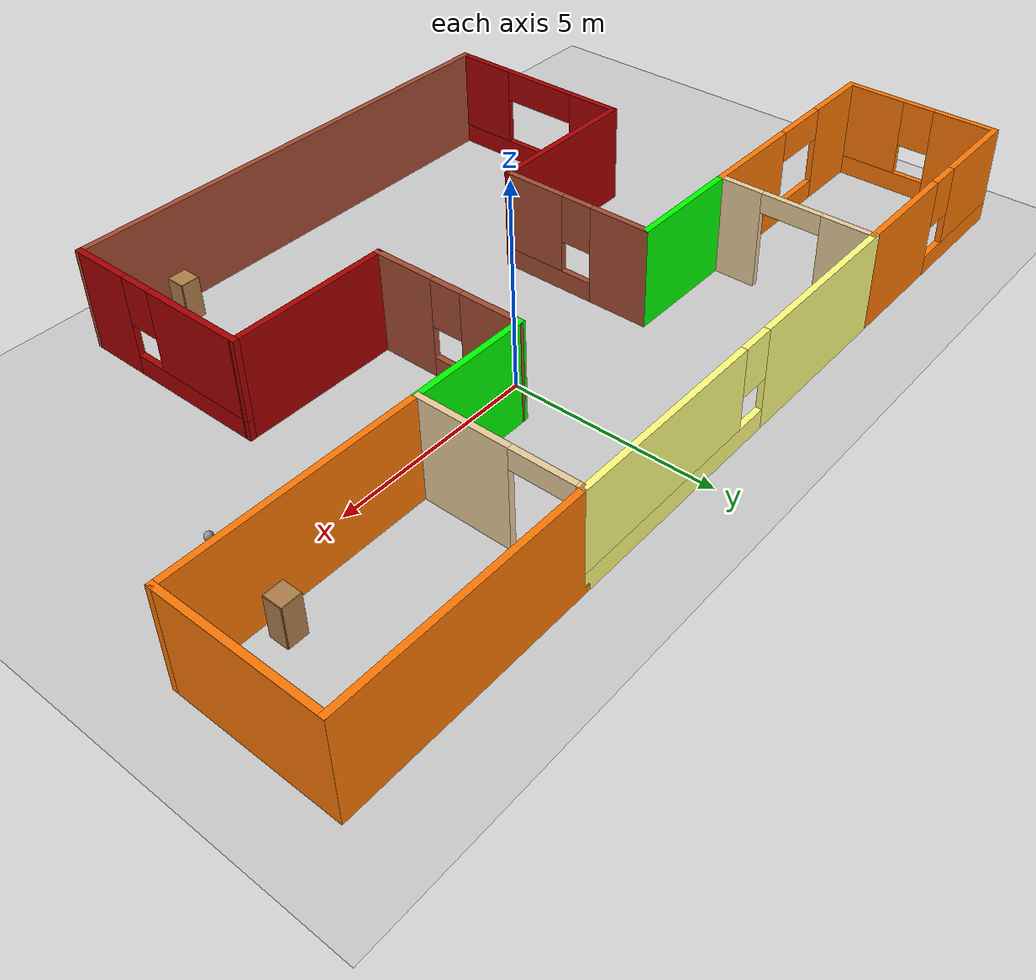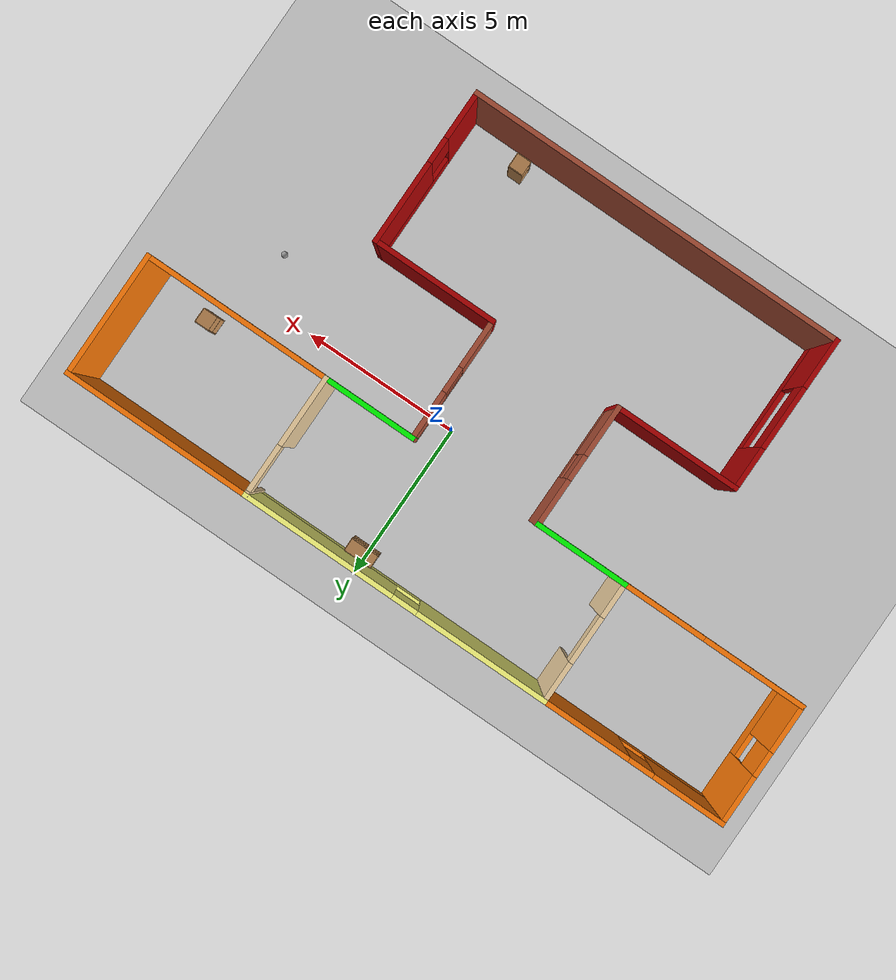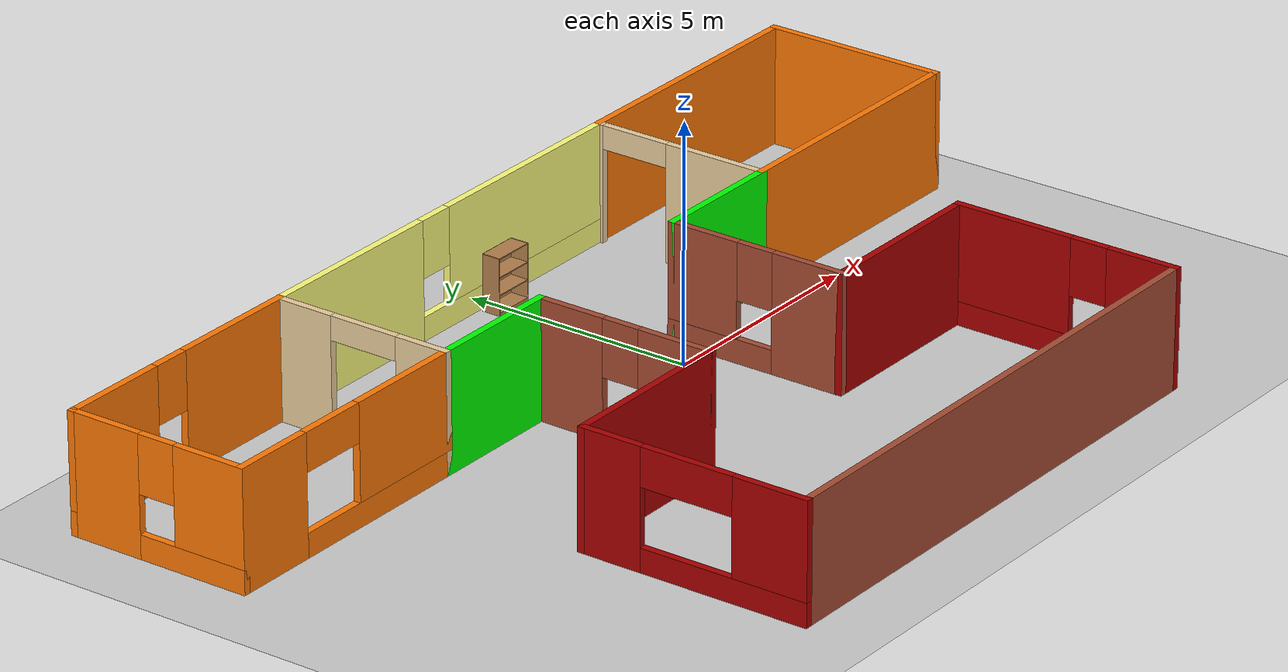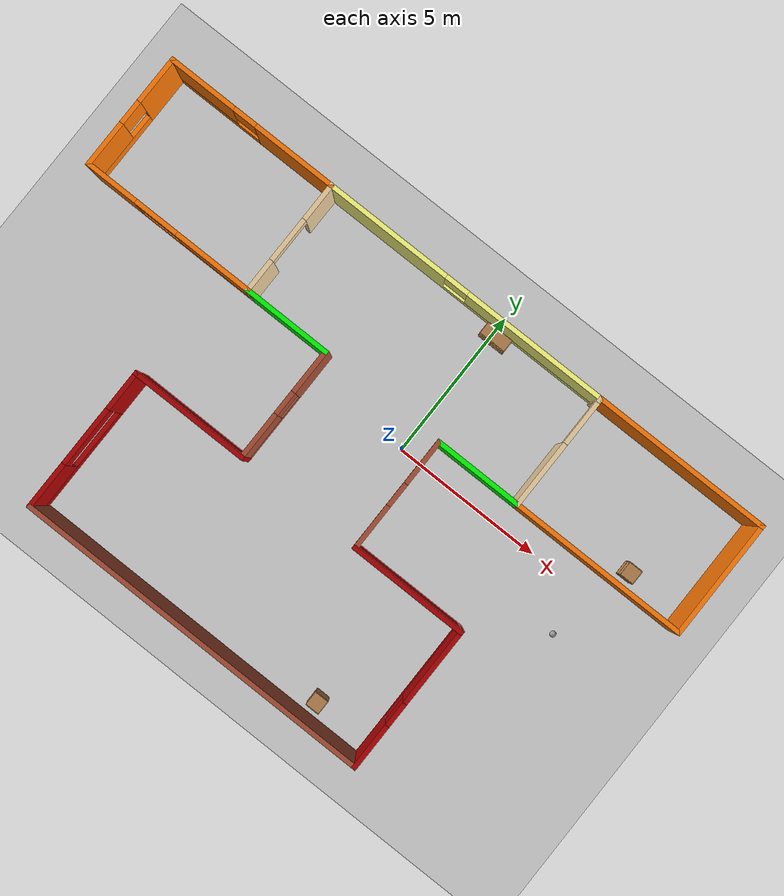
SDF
<sdf version="1.6">
 <world name="default">
  <model name="ground_plane">
   <static>1</static>
   <link name="link">
    <collision name="collision">
     <geometry><plane><normal>0 0 1</normal><size>100 100</size></plane></geometry>
     <surface><friction><ode><mu>100</mu><mu2>50</mu2></ode></friction></surface>
    </collision>
    <visual name="visual">
     <cast_shadows>0</cast_shadows>
     <geometry><plane><normal>0 0 1</normal><size>100 100</size></plane></geometry>
     <material>
      <script><uri>file://media/materials/scripts/gazebo.material</uri><name>Gazebo/Grey</name></script>
     </material>
    </visual>
   </link>
  </model>
  <model name="projectbuilding">
   <pose>-1.3397 -1.63448 0 0 -0 0</pose>
   <link name="Wall_0">
    <pose>0 6.2751 0 0 -0 0</pose>
    <visual name="Wall_0_Visual_0">
     <pose>-2.85668 0 1.25 0 -0 0</pose>
     <geometry><box><size>4.28664 0.15 2.5</size></box></geometry>
     <material>
      <script><uri>file://media/materials/scripts/gazebo.material</uri><name>Gazebo/Grey</name></script>
      <ambient>1 1 0.498039 1</ambient>
     </material>
     <meta><layer>0</layer></meta>
    </visual>
    <collision name="Wall_0_Collision_0">
     <geometry><box><size>4.28664 0.15 2.5</size></box></geometry>
     <pose>-2.85668 0 1.25 0 -0 0</pose>
    </collision>
    <visual name="Wall_0_Visual_1">
     <pose>2.14332 0 0.25 0 -0 0</pose>
     <geometry><box><size>5.71336 0.15 0.5</size></box></geometry>
     <material>
      <script><uri>file://media/materials/scripts/gazebo.material</uri><name>Gazebo/Grey</name></script>
      <ambient>1 1 0.498039 1</ambient>
     </material>
     <meta><layer>0</layer></meta>
    </visual>
    <collision name="Wall_0_Collision_1">
     <geometry><box><size>5.71336 0.15 0.5</size></box></geometry>
     <pose>2.14332 0 0.25 0 -0 0</pose>
    </collision>
    <visual name="Wall_0_Visual_2">
     <pose>2.54332 0 1.5 0 -0 0</pose>
     <geometry><box><size>4.91336 0.15 2</size></box></geometry>
     <material>
      <script><uri>file://media/materials/scripts/gazebo.material</uri><name>Gazebo/Grey</name></script>
      <ambient>1 1 0.498039 1</ambient>
     </material>
     <meta><layer>0</layer></meta>
    </visual>
    <collision name="Wall_0_Collision_2">
     <geometry><box><size>4.91336 0.15 2</size></box></geometry>
     <pose>2.54332 0 1.5 0 -0 0</pose>
    </collision>
    <visual name="Wall_0_Visual_3">
     <pose>-0.31336 0 1.9 0 -0 0</pose>
     <geometry><box><size>0.8 0.15 1.2</size></box></geometry>
     <material>
      <script><uri>file://media/materials/scripts/gazebo.material</uri><name>Gazebo/Grey</name></script>
      <ambient>1 1 0.498039 1</ambient>
     </material>
     <meta><layer>0</layer></meta>
    </visual>
    <collision name="Wall_0_Collision_3">
     <geometry><box><size>0.8 0.15 1.2</size></box></geometry>
     <pose>-0.31336 0 1.9 0 -0 0</pose>
    </collision>
   </link>
   <link name="Wall_16">
    <pose>-4.925 4.3501 0 0 0 -1.5708</pose>
    <visual name="Wall_16_Visual_0">
     <pose>-1.33475 0 1.25 0 -0 0</pose>
     <geometry><box><size>1.33049 0.15 2.5</size></box></geometry>
     <material>
      <script><uri>file://media/materials/scripts/gazebo.material</uri><name>Gazebo/Grey</name></script>
      <ambient>0.921569 0.807843 0.615686 1</ambient>
     </material>
     <meta><layer>0</layer></meta>
    </visual>
    <collision name="Wall_16_Collision_0">
     <geometry><box><size>1.33049 0.15 2.5</size></box></geometry>
     <pose>-1.33475 0 1.25 0 -0 0</pose>
    </collision>
    <visual name="Wall_16_Visual_1">
     <pose>1.41525 0 1.25 0 -0 0</pose>
     <geometry><box><size>1.16951 0.15 2.5</size></box></geometry>
     <material>
      <script><uri>file://media/materials/scripts/gazebo.material</uri><name>Gazebo/Grey</name></script>
      <ambient>0.921569 0.807843 0.615686 1</ambient>
     </material>
     <meta><layer>0</layer></meta>
    </visual>
    <collision name="Wall_16_Collision_1">
     <geometry><box><size>1.16951 0.15 2.5</size></box></geometry>
     <pose>1.41525 0 1.25 0 -0 0</pose>
    </collision>
    <visual name="Wall_16_Visual_2">
     <pose>0.080495 0 2.25 0 -0 0</pose>
     <geometry><box><size>1.5 0.15 0.5</size></box></geometry>
     <material>
      <script><uri>file://media/materials/scripts/gazebo.material</uri><name>Gazebo/Grey</name></script>
      <ambient>0.921569 0.807843 0.615686 1</ambient>
     </material>
     <meta><layer>0</layer></meta>
    </visual>
    <collision name="Wall_16_Collision_2">
     <geometry><box><size>1.5 0.15 0.5</size></box></geometry>
     <pose>0.080495 0 2.25 0 -0 0</pose>
    </collision>
   </link>
   <link name="Wall_17">
    <collision name="Wall_17_Collision">
     <geometry><box><size>3 0.15 2.5</size></box></geometry>
     <pose>0 0 1.25 0 -0 0</pose>
    </collision>
    <visual name="Wall_17_Visual">
     <pose>0 0 1.25 0 -0 0</pose>
     <geometry><box><size>3 0.15 2.5</size></box></geometry>
     <material>
      <script><uri>file://media/materials/scripts/gazebo.material</uri><name>Gazebo/Grey</name></script>
      <ambient>0 1 0 1</ambient>
     </material>
     <meta><layer>0</layer></meta>
    </visual>
    <pose>-3.5 2.4251 0 0 -0 0</pose>
   </link>
   <link name="Wall_19">
    <pose>4.925 4.3501 0 0 0 -1.5708</pose>
    <visual name="Wall_19_Visual_0">
     <pose>-1.89121 0 1.25 0 -0 0</pose>
     <geometry><box><size>0.217577 0.15 2.5</size></box></geometry>
     <material>
      <script><uri>file://media/materials/scripts/gazebo.material</uri><name>Gazebo/Grey</name></script>
      <ambient>0.921569 0.807843 0.615686 1</ambient>
     </material>
     <meta><layer>0</layer></meta>
    </visual>
    <collision name="Wall_19_Collision_0">
     <geometry><box><size>0.217577 0.15 2.5</size></box></geometry>
     <pose>-1.89121 0 1.25 0 -0 0</pose>
    </collision>
    <visual name="Wall_19_Visual_1">
     <pose>0.858788 0 1.25 0 -0 0</pose>
     <geometry><box><size>2.28242 0.15 2.5</size></box></geometry>
     <material>
      <script><uri>file://media/materials/scripts/gazebo.material</uri><name>Gazebo/Grey</name></script>
      <ambient>0.921569 0.807843 0.615686 1</ambient>
     </material>
     <meta><layer>0</layer></meta>
    </visual>
    <collision name="Wall_19_Collision_1">
     <geometry><box><size>2.28242 0.15 2.5</size></box></geometry>
     <pose>0.858788 0 1.25 0 -0 0</pose>
    </collision>
    <visual name="Wall_19_Visual_2">
     <pose>-1.03242 0 2.25 0 -0 0</pose>
     <geometry><box><size>1.5 0.15 0.5</size></box></geometry>
     <material>
      <script><uri>file://media/materials/scripts/gazebo.material</uri><name>Gazebo/Grey</name></script>
      <ambient>0.921569 0.807843 0.615686 1</ambient>
     </material>
     <meta><layer>0</layer></meta>
    </visual>
    <collision name="Wall_19_Collision_2">
     <geometry><box><size>1.5 0.15 0.5</size></box></geometry>
     <pose>-1.03242 0 2.25 0 -0 0</pose>
    </collision>
   </link>
   <link name="Wall_20">
    <collision name="Wall_20_Collision">
     <geometry><box><size>3 0.15 2.5</size></box></geometry>
     <pose>0 0 1.25 0 -0 0</pose>
    </collision>
    <visual name="Wall_20_Visual">
     <pose>0 0 1.25 0 -0 0</pose>
     <geometry><box><size>3 0.15 2.5</size></box></geometry>
     <material>
      <script><uri>file://media/materials/scripts/gazebo.material</uri><name>Gazebo/Grey</name></script>
      <ambient>0 1 0 1</ambient>
     </material>
     <meta><layer>0</layer></meta>
    </visual>
    <pose>3.5 2.4251 0 0 -0 3.14159</pose>
   </link>
   <link name="Wall_44">
    <pose>-2.075 0.5001 0 0 0 -1.5708</pose>
    <visual name="Wall_44_Visual_0">
     <pose>-1.22523 0 1.25 0 -0 0</pose>
     <geometry><box><size>1.54953 0.15 2.5</size></box></geometry>
     <material>
      <script><uri>file://media/materials/scripts/gazebo.material</uri><name>Gazebo/Bricks</name></script>
      <ambient>0 0.333333 0 1</ambient>
     </material>
     <meta><layer>0</layer></meta>
    </visual>
    <collision name="Wall_44_Collision_0">
     <geometry><box><size>1.54953 0.15 2.5</size></box></geometry>
     <pose>-1.22523 0 1.25 0 -0 0</pose>
    </collision>
    <visual name="Wall_44_Visual_1">
     <pose>0.774766 0 0.25 0 -0 0</pose>
     <geometry><box><size>2.45047 0.15 0.5</size></box></geometry>
     <material>
      <script><uri>file://media/materials/scripts/gazebo.material</uri><name>Gazebo/Bricks</name></script>
      <ambient>0 0.333333 0 1</ambient>
     </material>
     <meta><layer>0</layer></meta>
    </visual>
    <collision name="Wall_44_Collision_1">
     <geometry><box><size>2.45047 0.15 0.5</size></box></geometry>
     <pose>0.774766 0 0.25 0 -0 0</pose>
    </collision>
    <visual name="Wall_44_Visual_2">
     <pose>1.17477 0 1.5 0 -0 0</pose>
     <geometry><box><size>1.65047 0.15 2</size></box></geometry>
     <material>
      <script><uri>file://media/materials/scripts/gazebo.material</uri><name>Gazebo/Bricks</name></script>
      <ambient>0 0.333333 0 1</ambient>
     </material>
     <meta><layer>0</layer></meta>
    </visual>
    <collision name="Wall_44_Collision_2">
     <geometry><box><size>1.65047 0.15 2</size></box></geometry>
     <pose>1.17477 0 1.5 0 -0 0</pose>
    </collision>
    <visual name="Wall_44_Visual_3">
     <pose>-0.050468 0 1.9 0 -0 0</pose>
     <geometry><box><size>0.8 0.15 1.2</size></box></geometry>
     <material>
      <script><uri>file://media/materials/scripts/gazebo.material</uri><name>Gazebo/Bricks</name></script>
      <ambient>0 0.333333 0 1</ambient>
     </material>
     <meta><layer>0</layer></meta>
    </visual>
    <collision name="Wall_44_Collision_3">
     <geometry><box><size>0.8 0.15 1.2</size></box></geometry>
     <pose>-0.050468 0 1.9 0 -0 0</pose>
    </collision>
   </link>
   <link name="Wall_45">
    <collision name="Wall_45_Collision">
     <geometry><box><size>4 0.15 2.5</size></box></geometry>
     <pose>0 0 1.25 0 -0 0</pose>
    </collision>
    <visual name="Wall_45_Visual">
     <pose>0 0 1.25 0 -0 0</pose>
     <geometry><box><size>4 0.15 2.5</size></box></geometry>
     <material>
      <script><uri>file://media/materials/scripts/gazebo.material</uri><name>Gazebo/Grey</name></script>
      <ambient>0.666667 0 0 1</ambient>
     </material>
     <meta><layer>0</layer></meta>
    </visual>
    <pose>-4 -1.4249 0 0 -0 3.14159</pose>
   </link>
   <link name="Wall_46">
    <pose>-5.925 -3.8499 0 0 0 -1.5708</pose>
    <visual name="Wall_46_Visual_0">
     <pose>-1.81013 0 1.25 0 -0 0</pose>
     <geometry><box><size>1.37973 0.15 2.5</size></box></geometry>
     <material>
      <script><uri>file://media/materials/scripts/gazebo.material</uri><name>Gazebo/Grey</name></script>
      <ambient>0.666667 0 0 1</ambient>
     </material>
     <meta><layer>0</layer></meta>
    </visual>
    <collision name="Wall_46_Collision_0">
     <geometry><box><size>1.37973 0.15 2.5</size></box></geometry>
     <pose>-1.81013 0 1.25 0 -0 0</pose>
    </collision>
    <visual name="Wall_46_Visual_1">
     <pose>0.689866 0 0.25 0 -0 0</pose>
     <geometry><box><size>3.62027 0.15 0.5</size></box></geometry>
     <material>
      <script><uri>file://media/materials/scripts/gazebo.material</uri><name>Gazebo/Grey</name></script>
      <ambient>0.666667 0 0 1</ambient>
     </material>
     <meta><layer>0</layer></meta>
    </visual>
    <collision name="Wall_46_Collision_1">
     <geometry><box><size>3.62027 0.15 0.5</size></box></geometry>
     <pose>0.689866 0 0.25 0 -0 0</pose>
    </collision>
    <visual name="Wall_46_Visual_2">
     <pose>1.68987 0 1.5 0 -0 0</pose>
     <geometry><box><size>1.62027 0.15 2</size></box></geometry>
     <material>
      <script><uri>file://media/materials/scripts/gazebo.material</uri><name>Gazebo/Grey</name></script>
      <ambient>0.666667 0 0 1</ambient>
     </material>
     <meta><layer>0</layer></meta>
    </visual>
    <collision name="Wall_46_Collision_2">
     <geometry><box><size>1.62027 0.15 2</size></box></geometry>
     <pose>1.68987 0 1.5 0 -0 0</pose>
    </collision>
    <visual name="Wall_46_Visual_3">
     <pose>-0.120268 0 2.1 0 -0 0</pose>
     <geometry><box><size>2 0.15 0.8</size></box></geometry>
     <material>
      <script><uri>file://media/materials/scripts/gazebo.material</uri><name>Gazebo/Grey</name></script>
      <ambient>0.666667 0 0 1</ambient>
     </material>
     <meta><layer>0</layer></meta>
    </visual>
    <collision name="Wall_46_Collision_3">
     <geometry><box><size>2 0.15 0.8</size></box></geometry>
     <pose>-0.120268 0 2.1 0 -0 0</pose>
    </collision>
   </link>
   <link name="Wall_52">
    <collision name="Wall_52_Collision">
     <geometry><box><size>12 0.15 2.5</size></box></geometry>
     <pose>0 0 1.25 0 -0 0</pose>
    </collision>
    <visual name="Wall_52_Visual">
     <pose>0 0 1.25 0 -0 0</pose>
     <geometry><box><size>12 0.15 2.5</size></box></geometry>
     <material>
      <script><uri>file://media/materials/scripts/gazebo.material</uri><name>Gazebo/Bricks</name></script>
      <ambient>0.666667 0 0 1</ambient>
     </material>
     <meta><layer>0</layer></meta>
    </visual>
    <pose>0 -6.2749 0 0 -0 0</pose>
   </link>
   <link name="Wall_54">
    <pose>5.92523 -3.85009 0 0 -0 1.5707</pose>
    <visual name="Wall_54_Visual_0">
     <pose>-1.72268 0 1.25 0 -0 0</pose>
     <geometry><box><size>1.55464 0.15 2.5</size></box></geometry>
     <material>
      <script><uri>file://media/materials/scripts/gazebo.material</uri><name>Gazebo/Grey</name></script>
      <ambient>0.666667 0 0 1</ambient>
     </material>
     <meta><layer>0</layer></meta>
    </visual>
    <collision name="Wall_54_Collision_0">
     <geometry><box><size>1.55464 0.15 2.5</size></box></geometry>
     <pose>-1.72268 0 1.25 0 -0 0</pose>
    </collision>
    <visual name="Wall_54_Visual_1">
     <pose>0.777321 0 0.25 0 -0 0</pose>
     <geometry><box><size>3.44536 0.15 0.5</size></box></geometry>
     <material>
      <script><uri>file://media/materials/scripts/gazebo.material</uri><name>Gazebo/Grey</name></script>
      <ambient>0.666667 0 0 1</ambient>
     </material>
     <meta><layer>0</layer></meta>
    </visual>
    <collision name="Wall_54_Collision_1">
     <geometry><box><size>3.44536 0.15 0.5</size></box></geometry>
     <pose>0.777321 0 0.25 0 -0 0</pose>
    </collision>
    <visual name="Wall_54_Visual_2">
     <pose>1.17732 0 1.5 0 -0 0</pose>
     <geometry><box><size>2.64536 0.15 2</size></box></geometry>
     <material>
      <script><uri>file://media/materials/scripts/gazebo.material</uri><name>Gazebo/Grey</name></script>
      <ambient>0.666667 0 0 1</ambient>
     </material>
     <meta><layer>0</layer></meta>
    </visual>
    <collision name="Wall_54_Collision_2">
     <geometry><box><size>2.64536 0.15 2</size></box></geometry>
     <pose>1.17732 0 1.5 0 -0 0</pose>
    </collision>
    <visual name="Wall_54_Visual_3">
     <pose>-0.545359 0 1.9 0 -0 0</pose>
     <geometry><box><size>0.8 0.15 1.2</size></box></geometry>
     <material>
      <script><uri>file://media/materials/scripts/gazebo.material</uri><name>Gazebo/Grey</name></script>
      <ambient>0.666667 0 0 1</ambient>
     </material>
     <meta><layer>0</layer></meta>
    </visual>
    <collision name="Wall_54_Collision_3">
     <geometry><box><size>0.8 0.15 1.2</size></box></geometry>
     <pose>-0.545359 0 1.9 0 -0 0</pose>
    </collision>
   </link>
   <link name="Wall_56">
    <collision name="Wall_56_Collision">
     <geometry><box><size>4 0.15 2.5</size></box></geometry>
     <pose>0 0 1.25 0 -0 0</pose>
    </collision>
    <visual name="Wall_56_Visual">
     <pose>0 0 1.25 0 -0 0</pose>
     <geometry><box><size>4 0.15 2.5</size></box></geometry>
     <material>
      <script><uri>file://media/materials/scripts/gazebo.material</uri><name>Gazebo/Grey</name></script>
      <ambient>0.666667 0 0 1</ambient>
     </material>
     <meta><layer>0</layer></meta>
    </visual>
    <pose>4.00046 -1.42529 0 0 -0 3.14159</pose>
   </link>
   <link name="Wall_58">
    <pose>2.07523 0.499906 0 0 -0 1.57092</pose>
    <visual name="Wall_58_Visual_0">
     <pose>-1.19803 0 1.25 0 -0 0</pose>
     <geometry><box><size>1.60433 0.15 2.5</size></box></geometry>
     <material>
      <script><uri>file://media/materials/scripts/gazebo.material</uri><name>Gazebo/Bricks</name></script>
      <ambient>0 0.333333 0 1</ambient>
     </material>
     <meta><layer>0</layer></meta>
    </visual>
    <collision name="Wall_58_Collision_0">
     <geometry><box><size>1.60433 0.15 2.5</size></box></geometry>
     <pose>-1.19803 0 1.25 0 -0 0</pose>
    </collision>
    <visual name="Wall_58_Visual_1">
     <pose>0.802167 0 0.25 0 -0 0</pose>
     <geometry><box><size>2.39606 0.15 0.5</size></box></geometry>
     <material>
      <script><uri>file://media/materials/scripts/gazebo.material</uri><name>Gazebo/Bricks</name></script>
      <ambient>0 0.333333 0 1</ambient>
     </material>
     <meta><layer>0</layer></meta>
    </visual>
    <collision name="Wall_58_Collision_1">
     <geometry><box><size>2.39606 0.15 0.5</size></box></geometry>
     <pose>0.802167 0 0.25 0 -0 0</pose>
    </collision>
    <visual name="Wall_58_Visual_2">
     <pose>1.20217 0 1.5 0 -0 0</pose>
     <geometry><box><size>1.59606 0.15 2</size></box></geometry>
     <material>
      <script><uri>file://media/materials/scripts/gazebo.material</uri><name>Gazebo/Bricks</name></script>
      <ambient>0 0.333333 0 1</ambient>
     </material>
     <meta><layer>0</layer></meta>
    </visual>
    <collision name="Wall_58_Collision_2">
     <geometry><box><size>1.59606 0.15 2</size></box></geometry>
     <pose>1.20217 0 1.5 0 -0 0</pose>
    </collision>
    <visual name="Wall_58_Visual_3">
     <pose>0.004139 0 1.9 0 -0 0</pose>
     <geometry><box><size>0.8 0.15 1.2</size></box></geometry>
     <material>
      <script><uri>file://media/materials/scripts/gazebo.material</uri><name>Gazebo/Bricks</name></script>
      <ambient>0 0.333333 0 1</ambient>
     </material>
     <meta><layer>0</layer></meta>
    </visual>
    <collision name="Wall_58_Collision_3">
     <geometry><box><size>0.8 0.15 1.2</size></box></geometry>
     <pose>0.004139 0 1.9 0 -0 0</pose>
    </collision>
   </link>
   <link name="Wall_60">
    <collision name="Wall_60_Collision">
     <geometry><box><size>6 0.15 2.5</size></box></geometry>
     <pose>0 0 1.25 0 -0 0</pose>
    </collision>
    <visual name="Wall_60_Visual">
     <pose>0 0 1.25 0 -0 0</pose>
     <geometry><box><size>6 0.15 2.5</size></box></geometry>
     <material>
      <script><uri>file://media/materials/scripts/gazebo.material</uri><name>Gazebo/Grey</name></script>
      <ambient>0.996078 0.47451 0.0196078 1</ambient>
     </material>
     <meta><layer>0</layer></meta>
    </visual>
    <pose>7.85 6.2751 0 0 -0 0</pose>
   </link>
   <link name="Wall_62">
    <collision name="Wall_62_Collision">
     <geometry><box><size>4 0.15 2.5</size></box></geometry>
     <pose>0 0 1.25 0 -0 0</pose>
    </collision>
    <visual name="Wall_62_Visual">
     <pose>0 0 1.25 0 -0 0</pose>
     <geometry><box><size>4 0.15 2.5</size></box></geometry>
     <material>
      <script><uri>file://media/materials/scripts/gazebo.material</uri><name>Gazebo/Grey</name></script>
      <ambient>0.996078 0.47451 0.0196078 1</ambient>
     </material>
     <meta><layer>0</layer></meta>
    </visual>
    <pose>10.775 4.3501 0 0 0 -1.5708</pose>
   </link>
   <link name="Wall_64">
    <collision name="Wall_64_Collision">
     <geometry><box><size>6 0.15 2.5</size></box></geometry>
     <pose>0 0 1.25 0 -0 0</pose>
    </collision>
    <visual name="Wall_64_Visual">
     <pose>0 0 1.25 0 -0 0</pose>
     <geometry><box><size>6 0.15 2.5</size></box></geometry>
     <material>
      <script><uri>file://media/materials/scripts/gazebo.material</uri><name>Gazebo/Grey</name></script>
      <ambient>0.996078 0.47451 0.0196078 1</ambient>
     </material>
     <meta><layer>0</layer></meta>
    </visual>
    <pose>7.85 2.4251 0 0 -0 0</pose>
   </link>
   <link name="Wall_66">
    <pose>-7.85 6.2751 0 0 -0 3.14159</pose>
    <visual name="Wall_66_Visual_0">
     <pose>-1.57139 0 1.25 0 -0 0</pose>
     <geometry><box><size>2.85722 0.15 2.5</size></box></geometry>
     <material>
      <script><uri>file://media/materials/scripts/gazebo.material</uri><name>Gazebo/Grey</name></script>
      <ambient>0.996078 0.47451 0.0196078 1</ambient>
     </material>
     <meta><layer>0</layer></meta>
    </visual>
    <collision name="Wall_66_Collision_0">
     <geometry><box><size>2.85722 0.15 2.5</size></box></geometry>
     <pose>-1.57139 0 1.25 0 -0 0</pose>
    </collision>
    <visual name="Wall_66_Visual_1">
     <pose>1.42861 0 0.25 0 -0 0</pose>
     <geometry><box><size>3.14278 0.15 0.5</size></box></geometry>
     <material>
      <script><uri>file://media/materials/scripts/gazebo.material</uri><name>Gazebo/Grey</name></script>
      <ambient>0.996078 0.47451 0.0196078 1</ambient>
     </material>
     <meta><layer>0</layer></meta>
    </visual>
    <collision name="Wall_66_Collision_1">
     <geometry><box><size>3.14278 0.15 0.5</size></box></geometry>
     <pose>1.42861 0 0.25 0 -0 0</pose>
    </collision>
    <visual name="Wall_66_Visual_2">
     <pose>1.82861 0 1.5 0 -0 0</pose>
     <geometry><box><size>2.34278 0.15 2</size></box></geometry>
     <material>
      <script><uri>file://media/materials/scripts/gazebo.material</uri><name>Gazebo/Grey</name></script>
      <ambient>0.996078 0.47451 0.0196078 1</ambient>
     </material>
     <meta><layer>0</layer></meta>
    </visual>
    <collision name="Wall_66_Collision_2">
     <geometry><box><size>2.34278 0.15 2</size></box></geometry>
     <pose>1.82861 0 1.5 0 -0 0</pose>
    </collision>
    <visual name="Wall_66_Visual_3">
     <pose>0.257217 0 1.9 0 -0 0</pose>
     <geometry><box><size>0.8 0.15 1.2</size></box></geometry>
     <material>
      <script><uri>file://media/materials/scripts/gazebo.material</uri><name>Gazebo/Grey</name></script>
      <ambient>0.996078 0.47451 0.0196078 1</ambient>
     </material>
     <meta><layer>0</layer></meta>
    </visual>
    <collision name="Wall_66_Collision_3">
     <geometry><box><size>0.8 0.15 1.2</size></box></geometry>
     <pose>0.257217 0 1.9 0 -0 0</pose>
    </collision>
   </link>
   <link name="Wall_68">
    <pose>-10.775 4.3501 0 0 0 -1.5708</pose>
    <visual name="Wall_68_Visual_0">
     <pose>-1.1893 0 1.25 0 -0 0</pose>
     <geometry><box><size>1.62141 0.15 2.5</size></box></geometry>
     <material>
      <script><uri>file://media/materials/scripts/gazebo.material</uri><name>Gazebo/Grey</name></script>
      <ambient>0.996078 0.47451 0.0196078 1</ambient>
     </material>
     <meta><layer>0</layer></meta>
    </visual>
    <collision name="Wall_68_Collision_0">
     <geometry><box><size>1.62141 0.15 2.5</size></box></geometry>
     <pose>-1.1893 0 1.25 0 -0 0</pose>
    </collision>
    <visual name="Wall_68_Visual_1">
     <pose>0.810704 0 0.25 0 -0 0</pose>
     <geometry><box><size>2.37859 0.15 0.5</size></box></geometry>
     <material>
      <script><uri>file://media/materials/scripts/gazebo.material</uri><name>Gazebo/Grey</name></script>
      <ambient>0.996078 0.47451 0.0196078 1</ambient>
     </material>
     <meta><layer>0</layer></meta>
    </visual>
    <collision name="Wall_68_Collision_1">
     <geometry><box><size>2.37859 0.15 0.5</size></box></geometry>
     <pose>0.810704 0 0.25 0 -0 0</pose>
    </collision>
    <visual name="Wall_68_Visual_2">
     <pose>1.2107 0 1.5 0 -0 0</pose>
     <geometry><box><size>1.57859 0.15 2</size></box></geometry>
     <material>
      <script><uri>file://media/materials/scripts/gazebo.material</uri><name>Gazebo/Grey</name></script>
      <ambient>0.996078 0.47451 0.0196078 1</ambient>
     </material>
     <meta><layer>0</layer></meta>
    </visual>
    <collision name="Wall_68_Collision_2">
     <geometry><box><size>1.57859 0.15 2</size></box></geometry>
     <pose>1.2107 0 1.5 0 -0 0</pose>
    </collision>
    <visual name="Wall_68_Visual_3">
     <pose>0.021408 0 1.9 0 -0 0</pose>
     <geometry><box><size>0.8 0.15 1.2</size></box></geometry>
     <material>
      <script><uri>file://media/materials/scripts/gazebo.material</uri><name>Gazebo/Grey</name></script>
      <ambient>0.996078 0.47451 0.0196078 1</ambient>
     </material>
     <meta><layer>0</layer></meta>
    </visual>
    <collision name="Wall_68_Collision_3">
     <geometry><box><size>0.8 0.15 1.2</size></box></geometry>
     <pose>0.021408 0 1.9 0 -0 0</pose>
    </collision>
   </link>
   <link name="Wall_70">
    <pose>-7.85 2.4251 0 0 -0 0</pose>
    <visual name="Wall_70_Visual_0">
     <pose>-2.09671 0 1.25 0 -0 0</pose>
     <geometry><box><size>1.80658 0.15 2.5</size></box></geometry>
     <material>
      <script><uri>file://media/materials/scripts/gazebo.material</uri><name>Gazebo/Grey</name></script>
      <ambient>0.996078 0.47451 0.0196078 1</ambient>
     </material>
     <meta><layer>0</layer></meta>
    </visual>
    <collision name="Wall_70_Collision_0">
     <geometry><box><size>1.80658 0.15 2.5</size></box></geometry>
     <pose>-2.09671 0 1.25 0 -0 0</pose>
    </collision>
    <visual name="Wall_70_Visual_1">
     <pose>0.903291 0 0.25 0 -0 0</pose>
     <geometry><box><size>4.19342 0.15 0.5</size></box></geometry>
     <material>
      <script><uri>file://media/materials/scripts/gazebo.material</uri><name>Gazebo/Grey</name></script>
      <ambient>0.996078 0.47451 0.0196078 1</ambient>
     </material>
     <meta><layer>0</layer></meta>
    </visual>
    <collision name="Wall_70_Collision_1">
     <geometry><box><size>4.19342 0.15 0.5</size></box></geometry>
     <pose>0.903291 0 0.25 0 -0 0</pose>
    </collision>
    <visual name="Wall_70_Visual_2">
     <pose>1.65329 0 1.5 0 -0 0</pose>
     <geometry><box><size>2.69342 0.15 2</size></box></geometry>
     <material>
      <script><uri>file://media/materials/scripts/gazebo.material</uri><name>Gazebo/Grey</name></script>
      <ambient>0.996078 0.47451 0.0196078 1</ambient>
     </material>
     <meta><layer>0</layer></meta>
    </visual>
    <collision name="Wall_70_Collision_2">
     <geometry><box><size>2.69342 0.15 2</size></box></geometry>
     <pose>1.65329 0 1.5 0 -0 0</pose>
    </collision>
    <visual name="Wall_70_Visual_3">
     <pose>-0.443419 0 2.1 0 -0 0</pose>
     <geometry><box><size>1.5 0.15 0.8</size></box></geometry>
     <material>
      <script><uri>file://media/materials/scripts/gazebo.material</uri><name>Gazebo/Grey</name></script>
      <ambient>0.996078 0.47451 0.0196078 1</ambient>
     </material>
     <meta><layer>0</layer></meta>
    </visual>
    <collision name="Wall_70_Collision_3">
     <geometry><box><size>1.5 0.15 0.8</size></box></geometry>
     <pose>-0.443419 0 2.1 0 -0 0</pose>
    </collision>
   </link>
   <static>1</static>
  </model>
  <model name="my_ball">
   <link name="link_0">
    <inertial>
     <mass>1</mass>
     <inertia><ixx>0.1</ixx><ixy>0</ixy><ixz>0</ixz><iyy>0.1</iyy><iyz>0</iyz><izz>0.1</izz></inertia>
    </inertial>
    <visual name="visual">
     <geometry><sphere><radius>0.1</radius></sphere></geometry>
     <material>
      <lighting>1</lighting>
      <script><uri>file://media/materials/scripts/gazebo.material</uri><name>Gazebo/Grey</name></script>
      <shader type="pixel"><normal_map>__default__</normal_map></shader>
      <ambient>1 1 1 1</ambient>
      <diffuse>1 1 1 1</diffuse>
      <specular>1 1 1 1</specular>
      <emissive>1 1 1 1</emissive>
     </material>
    </visual>
    <collision name="collision">
     <geometry><sphere><radius>0.1</radius></sphere></geometry>
     <surface>
      <friction>
       <ode><mu>1</mu><mu2>1</mu2><fdir1>0 0 0</fdir1><slip1>0</slip1><slip2>0</slip2></ode>
       <torsional>
        <coefficient>1</coefficient>
        <patch_radius>0</patch_radius>
        <surface_radius>0</surface_radius>
        <use_patch_radius>1</use_patch_radius>
        <ode><slip>0</slip></ode>
       </torsional>
      </friction>
      <bounce><restitution_coefficient>0</restitution_coefficient><threshold>1e+06</threshold></bounce>
      <contact>
       <collide_without_contact>0</collide_without_contact>
       <collide_without_contact_bitmask>1</collide_without_contact_bitmask>
       <collide_bitmask>1</collide_bitmask>
       <ode>
        <soft_cfm>0</soft_cfm>
        <soft_erp>0.2</soft_erp>
        <kp>1e+13</kp>
        <kd>1</kd>
        <max_vel>0.01</max_vel>
        <min_depth>0</min_depth>
       </ode>
       <bullet>
        <split_impulse>1</split_impulse>
        <split_impulse_penetration_threshold>-0.01</split_impulse_penetration_threshold>
        <soft_cfm>0</soft_cfm>
        <soft_erp>0.2</soft_erp>
        <kp>1e+13</kp>
        <kd>1</kd>
       </bullet>
      </contact>
     </surface>
    </collision>
   </link>
   <static>0</static>
   <pose>6.9356 -1.49158 0.1 0 -0 0</pose>
  </model>
  <model name="bookshelf_0">
   <static>1</static>
   <link name="link">
    <inertial><mass>1</mass></inertial>
    <collision name="back">
     <pose>0 0.005 0.6 0 -0 0</pose>
     <geometry><box><size>0.9 0.01 1.2</size></box></geometry>
    </collision>
    <visual name="visual1">
     <pose>0 0.005 0.6 0 -0 0</pose>
     <geometry><box><size>0.9 0.01 1.2</size></box></geometry>
     <material>
      <script><uri>file://media/materials/scripts/gazebo.material</uri><name>Gazebo/Wood</name></script>
     </material>
    </visual>
    <collision name="left_side">
     <pose>0.45 -0.195 0.6 0 -0 0</pose>
     <geometry><box><size>0.02 0.4 1.2</size></box></geometry>
    </collision>
    <visual name="visual2">
     <pose>0.45 -0.195 0.6 0 -0 0</pose>
     <geometry><box><size>0.02 0.4 1.2</size></box></geometry>
     <material>
      <script><uri>file://media/materials/scripts/gazebo.material</uri><name>Gazebo/Wood</name></script>
     </material>
    </visual>
    <collision name="right_side">
     <pose>-0.45 -0.195 0.6 0 -0 0</pose>
     <geometry><box><size>0.02 0.4 1.2</size></box></geometry>
    </collision>
    <visual name="visual3">
     <pose>-0.45 -0.195 0.6 0 -0 0</pose>
     <geometry><box><size>0.02 0.4 1.2</size></box></geometry>
     <material>
      <script><uri>file://media/materials/scripts/gazebo.material</uri><name>Gazebo/Wood</name></script>
     </material>
    </visual>
    <collision name="bottom">
     <pose>0 -0.195 0.03 0 -0 0</pose>
     <geometry><box><size>0.88 0.4 0.06</size></box></geometry>
    </collision>
    <visual name="visual4">
     <pose>0 -0.195 0.03 0 -0 0</pose>
     <geometry><box><size>0.88 0.4 0.06</size></box></geometry>
     <material>
      <script><uri>file://media/materials/scripts/gazebo.material</uri><name>Gazebo/Wood</name></script>
     </material>
    </visual>
    <collision name="top">
     <pose>0 -0.195 1.19 0 -0 0</pose>
     <geometry><box><size>0.88 0.4 0.02</size></box></geometry>
    </collision>
    <visual name="visual5">
     <pose>0 -0.195 1.19 0 -0 0</pose>
     <geometry><box><size>0.88 0.4 0.02</size></box></geometry>
     <material>
      <script><uri>file://media/materials/scripts/gazebo.material</uri><name>Gazebo/Wood</name></script>
     </material>
    </visual>
    <collision name="low_shelf">
     <pose>0 -0.195 0.43 0 -0 0</pose>
     <geometry><box><size>0.88 0.4 0.02</size></box></geometry>
    </collision>
    <visual name="visual6">
     <pose>0 -0.195 0.43 0 -0 0</pose>
     <geometry><box><size>0.88 0.4 0.02</size></box></geometry>
     <material>
      <script><uri>file://media/materials/scripts/gazebo.material</uri><name>Gazebo/Wood</name></script>
     </material>
    </visual>
    <collision name="high_shelf">
     <pose>0 -0.195 0.8 0 -0 0</pose>
     <geometry><box><size>0.88 0.4 0.02</size></box></geometry>
    </collision>
    <visual name="visual7">
     <pose>0 -0.195 0.8 0 -0 0</pose>
     <geometry><box><size>0.88 0.4 0.02</size></box></geometry>
     <material>
      <script><uri>file://media/materials/scripts/gazebo.material</uri><name>Gazebo/Wood</name></script>
     </material>
    </visual>
   </link>
   <pose>0.128391 4.49411 0 0 -0 0</pose>
  </model>
  <model name="cabinet_1">
   <static>1</static>
   <link name="cabinet_bottom_plate">
    <inertial>
     <pose>0 0 -1 0 -0 0</pose>
     <inertia><ixx>2.05</ixx><ixy>0</ixy><ixz>0</ixz><iyy>2.05</iyy><iyz>0</iyz><izz>2.05</izz></inertia>
     <mass>25</mass>
    </inertial>
    <collision name="cabinet_bottom_plate_geom">
     <pose>0 0 0.01 0 -0 0</pose>
     <geometry><box><size>0.45 0.45 0.02</size></box></geometry>
    </collision>
    <visual name="cabinet_bottom_plate_geom_visual">
     <pose>0 0 0.01 0 -0 0</pose>
     <geometry><box><size>0.45 0.45 0.02</size></box></geometry>
     <material>
      <script><uri>file://media/materials/scripts/gazebo.material</uri><name>Gazebo/Wood</name></script>
     </material>
    </visual>
    <collision name="cabinet_bottom_plate_geom_cabinet_back_plate">
     <pose>0.235 0 0.51 0 -0 0</pose>
     <geometry><box><size>0.02 0.45 1.02</size></box></geometry>
    </collision>
    <visual name="cabinet_bottom_plate_geom_cabinet_back_plate_visual">
     <pose>0.235 0 0.51 0 -0 0</pose>
     <geometry><box><size>0.02 0.45 1.02</size></box></geometry>
     <material>
      <script><uri>file://media/materials/scripts/gazebo.material</uri><name>Gazebo/Wood</name></script>
     </material>
    </visual>
    <collision name="cabinet_bottom_plate_geom_cabinet_left_plate">
     <pose>0 0.235 0.51 0 -0 0</pose>
     <geometry><box><size>0.45 0.02 1.02</size></box></geometry>
    </collision>
    <visual name="cabinet_bottom_plate_geom_cabinet_left_plate_visual">
     <pose>0 0.235 0.51 0 -0 0</pose>
     <geometry><box><size>0.45 0.02 1.02</size></box></geometry>
     <material>
      <script><uri>file://media/materials/scripts/gazebo.material</uri><name>Gazebo/Wood</name></script>
     </material>
    </visual>
    <collision name="cabinet_bottom_plate_geom_cabinet_middle_plate">
     <pose>0 0 0.51 0 -0 0</pose>
     <geometry><box><size>0.45 0.45 0.02</size></box></geometry>
    </collision>
    <visual name="cabinet_bottom_plate_geom_cabinet_middle_plate_visual">
     <pose>0 0 0.51 0 -0 0</pose>
     <geometry><box><size>0.45 0.45 0.02</size></box></geometry>
     <material>
      <script><uri>file://media/materials/scripts/gazebo.material</uri><name>Gazebo/Wood</name></script>
     </material>
    </visual>
    <collision name="cabinet_bottom_plate_geom_cabinet_right_plate">
     <pose>0 -0.235 0.51 0 -0 0</pose>
     <geometry><box><size>0.45 0.02 1.02</size></box></geometry>
    </collision>
    <visual name="cabinet_bottom_plate_geom_cabinet_right_plate_visual">
     <pose>0 -0.235 0.51 0 -0 0</pose>
     <geometry><box><size>0.45 0.02 1.02</size></box></geometry>
     <material>
      <script><uri>file://media/materials/scripts/gazebo.material</uri><name>Gazebo/Wood</name></script>
     </material>
    </visual>
    <collision name="cabinet_bottom_plate_geom_cabinet_top_plate">
     <pose>0 0 1.01 0 -0 0</pose>
     <geometry><box><size>0.45 0.45 0.02</size></box></geometry>
    </collision>
    <visual name="cabinet_bottom_plate_geom_cabinet_top_plate_visual">
     <pose>0 0 1.01 0 -0 0</pose>
     <geometry><box><size>0.45 0.45 0.02</size></box></geometry>
     <material>
      <script><uri>file://media/materials/scripts/gazebo.material</uri><name>Gazebo/Wood</name></script>
     </material>
    </visual>
   </link>
   <pose>2.67513 -7.34143 0 0 -0 0</pose>
  </model>
  <model name="cabinet_2">
   <static>1</static>
   <link name="cabinet_bottom_plate">
    <inertial>
     <pose>0 0 -1 0 -0 0</pose>
     <inertia><ixx>2.05</ixx><ixy>0</ixy><ixz>0</ixz><iyy>2.05</iyy><iyz>0</iyz><izz>2.05</izz></inertia>
     <mass>25</mass>
    </inertial>
    <collision name="cabinet_bottom_plate_geom">
     <pose>0 0 0.01 0 -0 0</pose>
     <geometry><box><size>0.45 0.45 0.02</size></box></geometry>
    </collision>
    <visual name="cabinet_bottom_plate_geom_visual">
     <pose>0 0 0.01 0 -0 0</pose>
     <geometry><box><size>0.45 0.45 0.02</size></box></geometry>
     <material>
      <script><uri>file://media/materials/scripts/gazebo.material</uri><name>Gazebo/Wood</name></script>
     </material>
    </visual>
    <collision name="cabinet_bottom_plate_geom_cabinet_back_plate">
     <pose>0.235 0 0.51 0 -0 0</pose>
     <geometry><box><size>0.02 0.45 1.02</size></box></geometry>
    </collision>
    <visual name="cabinet_bottom_plate_geom_cabinet_back_plate_visual">
     <pose>0.235 0 0.51 0 -0 0</pose>
     <geometry><box><size>0.02 0.45 1.02</size></box></geometry>
     <material>
      <script><uri>file://media/materials/scripts/gazebo.material</uri><name>Gazebo/Wood</name></script>
     </material>
    </visual>
    <collision name="cabinet_bottom_plate_geom_cabinet_left_plate">
     <pose>0 0.235 0.51 0 -0 0</pose>
     <geometry><box><size>0.45 0.02 1.02</size></box></geometry>
    </collision>
    <visual name="cabinet_bottom_plate_geom_cabinet_left_plate_visual">
     <pose>0 0.235 0.51 0 -0 0</pose>
     <geometry><box><size>0.45 0.02 1.02</size></box></geometry>
     <material>
      <script><uri>file://media/materials/scripts/gazebo.material</uri><name>Gazebo/Wood</name></script>
     </material>
    </visual>
    <collision name="cabinet_bottom_plate_geom_cabinet_middle_plate">
     <pose>0 0 0.51 0 -0 0</pose>
     <geometry><box><size>0.45 0.45 0.02</size></box></geometry>
    </collision>
    <visual name="cabinet_bottom_plate_geom_cabinet_middle_plate_visual">
     <pose>0 0 0.51 0 -0 0</pose>
     <geometry><box><size>0.45 0.45 0.02</size></box></geometry>
     <material>
      <script><uri>file://media/materials/scripts/gazebo.material</uri><name>Gazebo/Wood</name></script>
     </material>
    </visual>
    <collision name="cabinet_bottom_plate_geom_cabinet_right_plate">
     <pose>0 -0.235 0.51 0 -0 0</pose>
     <geometry><box><size>0.45 0.02 1.02</size></box></geometry>
    </collision>
    <visual name="cabinet_bottom_plate_geom_cabinet_right_plate_visual">
     <pose>0 -0.235 0.51 0 -0 0</pose>
     <geometry><box><size>0.45 0.02 1.02</size></box></geometry>
     <material>
      <script><uri>file://media/materials/scripts/gazebo.material</uri><name>Gazebo/Wood</name></script>
     </material>
    </visual>
    <collision name="cabinet_bottom_plate_geom_cabinet_top_plate">
     <pose>0 0 1.01 0 -0 0</pose>
     <geometry><box><size>0.45 0.45 0.02</size></box></geometry>
    </collision>
    <visual name="cabinet_bottom_plate_geom_cabinet_top_plate_visual">
     <pose>0 0 1.01 0 -0 0</pose>
     <geometry><box><size>0.45 0.45 0.02</size></box></geometry>
     <material>
      <script><uri>file://media/materials/scripts/gazebo.material</uri><name>Gazebo/Wood</name></script>
     </material>
    </visual>
   </link>
   <pose>7.52465 1.33906 0 0 -0 0</pose>
  </model>
 </world>
</sdf>
